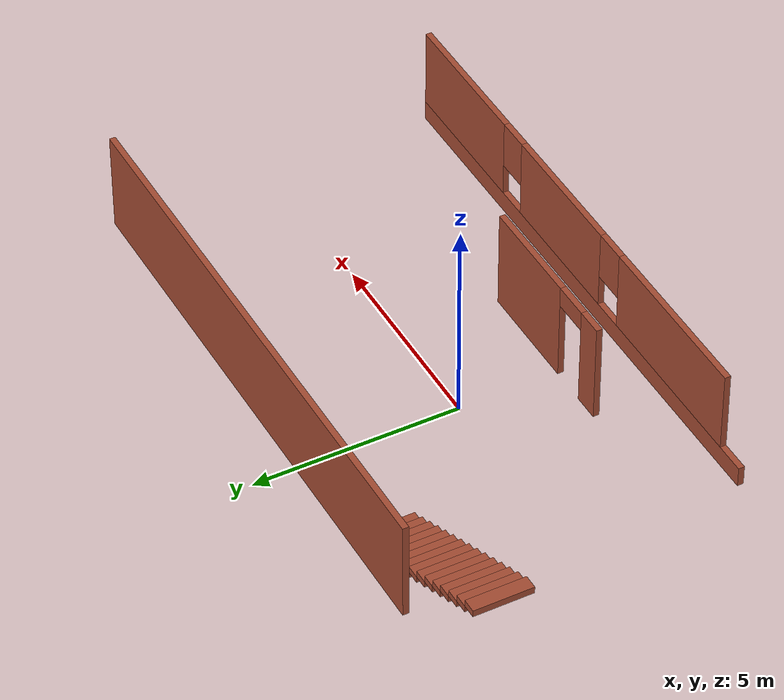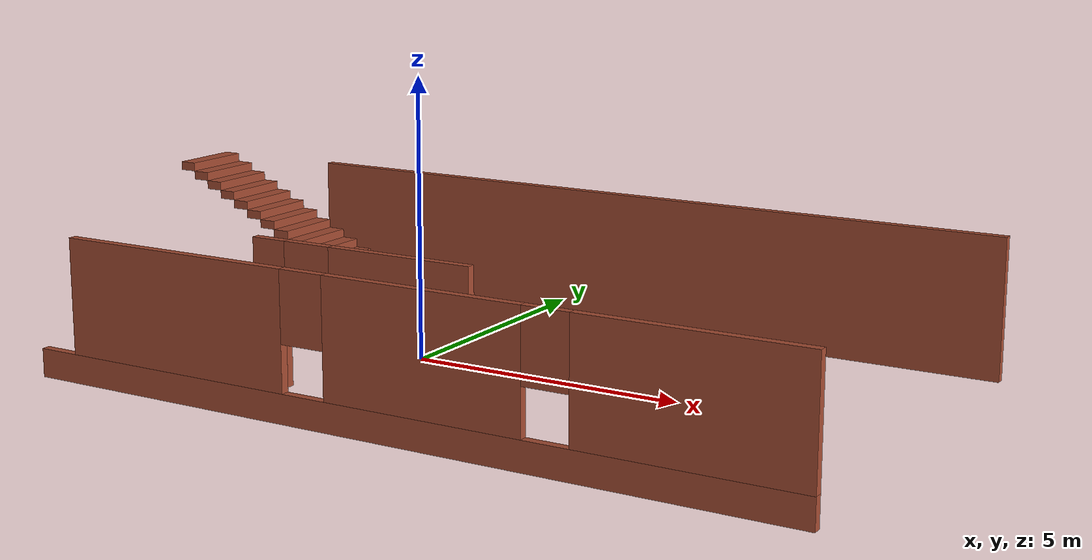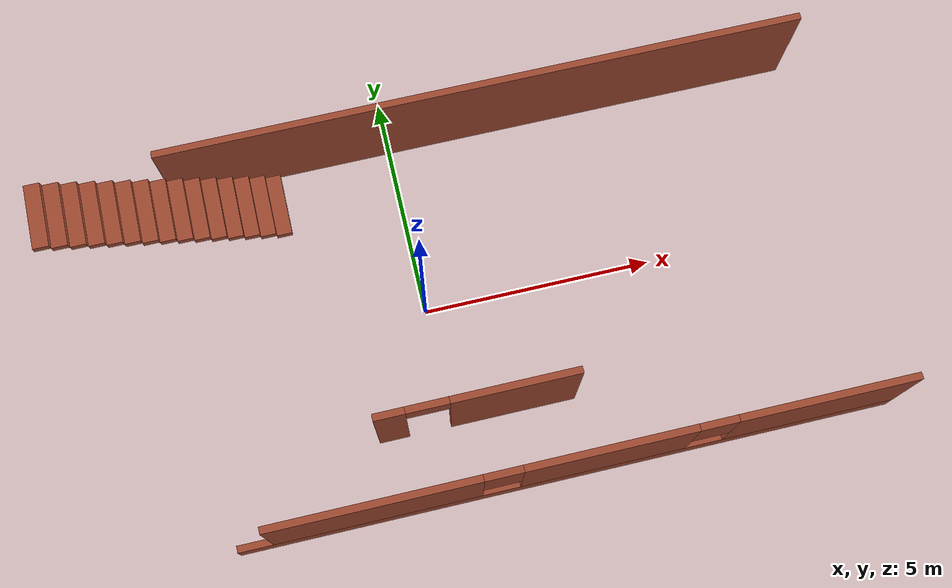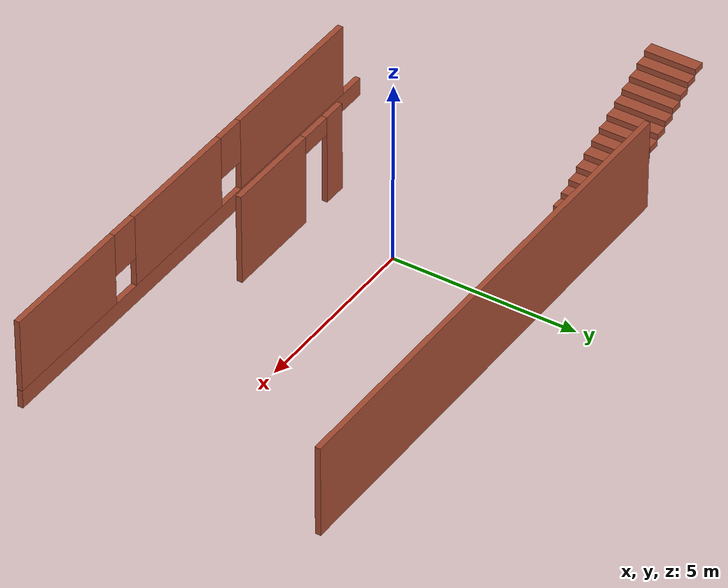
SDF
<sdf version="1.7">
 <model name="my_test_world">
  <link name="Stairs_1">
   <visual name="Stairs_1_Visual_0">
    <pose>-2.66061 3.11353 0.083333 0 -0 -1.5708</pose>
    <geometry><box><size>1.40227 0.336583 0.166667</size></box></geometry>
    <material>
     <script><uri>file://media/materials/scripts/gazebo.material</uri><name>Gazebo/Bricks</name></script>
     <ambient>1 1 1 1</ambient>
     <shader type="pixel"/>
    </material>
    <meta><layer>0</layer></meta>
   </visual>
   <visual name="Stairs_1_Visual_1">
    <pose>-2.99719 3.11353 0.25 0 -0 -1.5708</pose>
    <geometry><box><size>1.40227 0.336583 0.166667</size></box></geometry>
    <material>
     <script><uri>file://media/materials/scripts/gazebo.material</uri><name>Gazebo/Bricks</name></script>
     <ambient>1 1 1 1</ambient>
     <shader type="pixel"/>
    </material>
    <meta><layer>0</layer></meta>
   </visual>
   <visual name="Stairs_1_Visual_2">
    <pose>-3.33377 3.11353 0.416667 0 -0 -1.5708</pose>
    <geometry><box><size>1.40227 0.336583 0.166667</size></box></geometry>
    <material>
     <script><uri>file://media/materials/scripts/gazebo.material</uri><name>Gazebo/Bricks</name></script>
     <ambient>1 1 1 1</ambient>
     <shader type="pixel"/>
    </material>
    <meta><layer>0</layer></meta>
   </visual>
   <visual name="Stairs_1_Visual_3">
    <pose>-3.67036 3.11353 0.583333 0 -0 -1.5708</pose>
    <geometry><box><size>1.40227 0.336583 0.166667</size></box></geometry>
    <material>
     <script><uri>file://media/materials/scripts/gazebo.material</uri><name>Gazebo/Bricks</name></script>
     <ambient>1 1 1 1</ambient>
     <shader type="pixel"/>
    </material>
    <meta><layer>0</layer></meta>
   </visual>
   <visual name="Stairs_1_Visual_4">
    <pose>-4.00694 3.11353 0.75 0 -0 -1.5708</pose>
    <geometry><box><size>1.40227 0.336583 0.166667</size></box></geometry>
    <material>
     <script><uri>file://media/materials/scripts/gazebo.material</uri><name>Gazebo/Bricks</name></script>
     <ambient>1 1 1 1</ambient>
     <shader type="pixel"/>
    </material>
    <meta><layer>0</layer></meta>
   </visual>
   <visual name="Stairs_1_Visual_8">
    <pose>-5.35327 3.11353 1.41667 0 -0 -1.5708</pose>
    <geometry><box><size>1.40227 0.336583 0.166667</size></box></geometry>
    <material>
     <script><uri>file://media/materials/scripts/gazebo.material</uri><name>Gazebo/Bricks</name></script>
     <ambient>1 1 1 1</ambient>
     <shader type="pixel"/>
    </material>
    <meta><layer>0</layer></meta>
   </visual>
   <visual name="Stairs_1_Visual_5">
    <pose>-4.34352 3.11353 0.916667 0 -0 -1.5708</pose>
    <geometry><box><size>1.40227 0.336583 0.166667</size></box></geometry>
    <material>
     <script><uri>file://media/materials/scripts/gazebo.material</uri><name>Gazebo/Bricks</name></script>
     <ambient>1 1 1 1</ambient>
     <shader type="pixel"/>
    </material>
    <meta><layer>0</layer></meta>
   </visual>
   <visual name="Stairs_1_Visual_6">
    <pose>-4.68011 3.11353 1.08333 0 -0 -1.5708</pose>
    <geometry><box><size>1.40227 0.336583 0.166667</size></box></geometry>
    <material>
     <script><uri>file://media/materials/scripts/gazebo.material</uri><name>Gazebo/Bricks</name></script>
     <ambient>1 1 1 1</ambient>
     <shader type="pixel"/>
    </material>
    <meta><layer>0</layer></meta>
   </visual>
   <visual name="Stairs_1_Visual_7">
    <pose>-5.01669 3.11353 1.25 0 -0 -1.5708</pose>
    <geometry><box><size>1.40227 0.336583 0.166667</size></box></geometry>
    <material>
     <script><uri>file://media/materials/scripts/gazebo.material</uri><name>Gazebo/Bricks</name></script>
     <ambient>1 1 1 1</ambient>
     <shader type="pixel"/>
    </material>
    <meta><layer>0</layer></meta>
   </visual>
   <visual name="Stairs_1_Visual_9">
    <pose>-5.68986 3.11353 1.58333 0 -0 -1.5708</pose>
    <geometry><box><size>1.40227 0.336583 0.166667</size></box></geometry>
    <material>
     <script><uri>file://media/materials/scripts/gazebo.material</uri><name>Gazebo/Bricks</name></script>
     <ambient>1 1 1 1</ambient>
     <shader type="pixel"/>
    </material>
    <meta><layer>0</layer></meta>
   </visual>
   <visual name="Stairs_1_Visual_10">
    <pose>-6.02644 3.11353 1.75 0 -0 -1.5708</pose>
    <geometry><box><size>1.40227 0.336583 0.166667</size></box></geometry>
    <material>
     <script><uri>file://media/materials/scripts/gazebo.material</uri><name>Gazebo/Bricks</name></script>
     <ambient>1 1 1 1</ambient>
     <shader type="pixel"/>
    </material>
    <meta><layer>0</layer></meta>
   </visual>
   <visual name="Stairs_1_Visual_11">
    <pose>-6.36302 3.11353 1.91667 0 -0 -1.5708</pose>
    <geometry><box><size>1.40227 0.336583 0.166667</size></box></geometry>
    <material>
     <script><uri>file://media/materials/scripts/gazebo.material</uri><name>Gazebo/Bricks</name></script>
     <ambient>1 1 1 1</ambient>
     <shader type="pixel"/>
    </material>
    <meta><layer>0</layer></meta>
   </visual>
   <visual name="Stairs_1_Visual_12">
    <pose>-6.69961 3.11353 2.08333 0 -0 -1.5708</pose>
    <geometry><box><size>1.40227 0.336583 0.166667</size></box></geometry>
    <material>
     <script><uri>file://media/materials/scripts/gazebo.material</uri><name>Gazebo/Bricks</name></script>
     <ambient>1 1 1 1</ambient>
     <shader type="pixel"/>
    </material>
    <meta><layer>0</layer></meta>
   </visual>
   <visual name="Stairs_1_Visual_13">
    <pose>-7.03619 3.11353 2.25 0 -0 -1.5708</pose>
    <geometry><box><size>1.40227 0.336583 0.166667</size></box></geometry>
    <material>
     <script><uri>file://media/materials/scripts/gazebo.material</uri><name>Gazebo/Bricks</name></script>
     <ambient>1 1 1 1</ambient>
     <shader type="pixel"/>
    </material>
    <meta><layer>0</layer></meta>
   </visual>
   <visual name="Stairs_1_Visual_14">
    <pose>-7.37277 3.11353 2.41667 0 -0 -1.5708</pose>
    <geometry><box><size>1.40227 0.336583 0.166667</size></box></geometry>
    <material>
     <script><uri>file://media/materials/scripts/gazebo.material</uri><name>Gazebo/Bricks</name></script>
     <ambient>1 1 1 1</ambient>
     <shader type="pixel"/>
    </material>
    <meta><layer>0</layer></meta>
   </visual>
   <collision name="Stairs_1_Collision_0">
    <pose>-2.66061 3.11353 0.083333 0 0 -1.5708</pose>
    <geometry><box><size>1.40227 0.336583 0.166667</size></box></geometry>
    <surface>
     <friction>
      <ode><mu>1</mu><mu2>1</mu2><fdir1>0 0 0</fdir1><slip1>0</slip1><slip2>0</slip2></ode>
      <torsional>
       <coefficient>1</coefficient>
       <patch_radius>0</patch_radius>
       <surface_radius>0</surface_radius>
       <use_patch_radius>1</use_patch_radius>
       <ode><slip>0</slip></ode>
      </torsional>
     </friction>
     <bounce><restitution_coefficient>0</restitution_coefficient><threshold>1e+06</threshold></bounce>
     <contact>
      <collide_without_contact>0</collide_without_contact>
      <collide_without_contact_bitmask>1</collide_without_contact_bitmask>
      <collide_bitmask>1</collide_bitmask>
      <ode>
       <soft_cfm>0</soft_cfm>
       <soft_erp>0.2</soft_erp>
       <kp>1e+13</kp>
       <kd>1</kd>
       <max_vel>0.01</max_vel>
       <min_depth>0</min_depth>
      </ode>
      <bullet>
       <split_impulse>1</split_impulse>
       <split_impulse_penetration_threshold>-0.01</split_impulse_penetration_threshold>
       <soft_cfm>0</soft_cfm>
       <soft_erp>0.2</soft_erp>
       <kp>1e+13</kp>
       <kd>1</kd>
      </bullet>
     </contact>
    </surface>
   </collision>
   <collision name="Stairs_1_Collision_1">
    <pose>-2.99719 3.11353 0.25 0 0 -1.5708</pose>
    <geometry><box><size>1.40227 0.336583 0.166667</size></box></geometry>
    <surface>
     <friction>
      <ode><mu>1</mu><mu2>1</mu2><fdir1>0 0 0</fdir1><slip1>0</slip1><slip2>0</slip2></ode>
      <torsional>
       <coefficient>1</coefficient>
       <patch_radius>0</patch_radius>
       <surface_radius>0</surface_radius>
       <use_patch_radius>1</use_patch_radius>
       <ode><slip>0</slip></ode>
      </torsional>
     </friction>
     <bounce><restitution_coefficient>0</restitution_coefficient><threshold>1e+06</threshold></bounce>
     <contact>
      <collide_without_contact>0</collide_without_contact>
      <collide_without_contact_bitmask>1</collide_without_contact_bitmask>
      <collide_bitmask>1</collide_bitmask>
      <ode>
       <soft_cfm>0</soft_cfm>
       <soft_erp>0.2</soft_erp>
       <kp>1e+13</kp>
       <kd>1</kd>
       <max_vel>0.01</max_vel>
       <min_depth>0</min_depth>
      </ode>
      <bullet>
       <split_impulse>1</split_impulse>
       <split_impulse_penetration_threshold>-0.01</split_impulse_penetration_threshold>
       <soft_cfm>0</soft_cfm>
       <soft_erp>0.2</soft_erp>
       <kp>1e+13</kp>
       <kd>1</kd>
      </bullet>
     </contact>
    </surface>
   </collision>
   <collision name="Stairs_1_Collision_2">
    <pose>-3.33377 3.11353 0.416667 0 0 -1.5708</pose>
    <geometry><box><size>1.40227 0.336583 0.166667</size></box></geometry>
    <surface>
     <friction>
      <ode><mu>1</mu><mu2>1</mu2><fdir1>0 0 0</fdir1><slip1>0</slip1><slip2>0</slip2></ode>
      <torsional>
       <coefficient>1</coefficient>
       <patch_radius>0</patch_radius>
       <surface_radius>0</surface_radius>
       <use_patch_radius>1</use_patch_radius>
       <ode><slip>0</slip></ode>
      </torsional>
     </friction>
     <bounce><restitution_coefficient>0</restitution_coefficient><threshold>1e+06</threshold></bounce>
     <contact>
      <collide_without_contact>0</collide_without_contact>
      <collide_without_contact_bitmask>1</collide_without_contact_bitmask>
      <collide_bitmask>1</collide_bitmask>
      <ode>
       <soft_cfm>0</soft_cfm>
       <soft_erp>0.2</soft_erp>
       <kp>1e+13</kp>
       <kd>1</kd>
       <max_vel>0.01</max_vel>
       <min_depth>0</min_depth>
      </ode>
      <bullet>
       <split_impulse>1</split_impulse>
       <split_impulse_penetration_threshold>-0.01</split_impulse_penetration_threshold>
       <soft_cfm>0</soft_cfm>
       <soft_erp>0.2</soft_erp>
       <kp>1e+13</kp>
       <kd>1</kd>
      </bullet>
     </contact>
    </surface>
   </collision>
   <collision name="Stairs_1_Collision_4">
    <pose>-4.00694 3.11353 0.75 0 0 -1.5708</pose>
    <geometry><box><size>1.40227 0.336583 0.166667</size></box></geometry>
    <surface>
     <friction>
      <ode><mu>1</mu><mu2>1</mu2><fdir1>0 0 0</fdir1><slip1>0</slip1><slip2>0</slip2></ode>
      <torsional>
       <coefficient>1</coefficient>
       <patch_radius>0</patch_radius>
       <surface_radius>0</surface_radius>
       <use_patch_radius>1</use_patch_radius>
       <ode><slip>0</slip></ode>
      </torsional>
     </friction>
     <bounce><restitution_coefficient>0</restitution_coefficient><threshold>1e+06</threshold></bounce>
     <contact>
      <collide_without_contact>0</collide_without_contact>
      <collide_without_contact_bitmask>1</collide_without_contact_bitmask>
      <collide_bitmask>1</collide_bitmask>
      <ode>
       <soft_cfm>0</soft_cfm>
       <soft_erp>0.2</soft_erp>
       <kp>1e+13</kp>
       <kd>1</kd>
       <max_vel>0.01</max_vel>
       <min_depth>0</min_depth>
      </ode>
      <bullet>
       <split_impulse>1</split_impulse>
       <split_impulse_penetration_threshold>-0.01</split_impulse_penetration_threshold>
       <soft_cfm>0</soft_cfm>
       <soft_erp>0.2</soft_erp>
       <kp>1e+13</kp>
       <kd>1</kd>
      </bullet>
     </contact>
    </surface>
   </collision>
   <collision name="Stairs_1_Collision_3">
    <pose>-3.67036 3.11353 0.583333 0 0 -1.5708</pose>
    <geometry><box><size>1.40227 0.336583 0.166667</size></box></geometry>
    <surface>
     <friction>
      <ode><mu>1</mu><mu2>1</mu2><fdir1>0 0 0</fdir1><slip1>0</slip1><slip2>0</slip2></ode>
      <torsional>
       <coefficient>1</coefficient>
       <patch_radius>0</patch_radius>
       <surface_radius>0</surface_radius>
       <use_patch_radius>1</use_patch_radius>
       <ode><slip>0</slip></ode>
      </torsional>
     </friction>
     <bounce><restitution_coefficient>0</restitution_coefficient><threshold>1e+06</threshold></bounce>
     <contact>
      <collide_without_contact>0</collide_without_contact>
      <collide_without_contact_bitmask>1</collide_without_contact_bitmask>
      <collide_bitmask>1</collide_bitmask>
      <ode>
       <soft_cfm>0</soft_cfm>
       <soft_erp>0.2</soft_erp>
       <kp>1e+13</kp>
       <kd>1</kd>
       <max_vel>0.01</max_vel>
       <min_depth>0</min_depth>
      </ode>
      <bullet>
       <split_impulse>1</split_impulse>
       <split_impulse_penetration_threshold>-0.01</split_impulse_penetration_threshold>
       <soft_cfm>0</soft_cfm>
       <soft_erp>0.2</soft_erp>
       <kp>1e+13</kp>
       <kd>1</kd>
      </bullet>
     </contact>
    </surface>
   </collision>
   <collision name="Stairs_1_Collision_5">
    <pose>-4.34352 3.11353 0.916667 0 0 -1.5708</pose>
    <geometry><box><size>1.40227 0.336583 0.166667</size></box></geometry>
    <surface>
     <friction>
      <ode><mu>1</mu><mu2>1</mu2><fdir1>0 0 0</fdir1><slip1>0</slip1><slip2>0</slip2></ode>
      <torsional>
       <coefficient>1</coefficient>
       <patch_radius>0</patch_radius>
       <surface_radius>0</surface_radius>
       <use_patch_radius>1</use_patch_radius>
       <ode><slip>0</slip></ode>
      </torsional>
     </friction>
     <bounce><restitution_coefficient>0</restitution_coefficient><threshold>1e+06</threshold></bounce>
     <contact>
      <collide_without_contact>0</collide_without_contact>
      <collide_without_contact_bitmask>1</collide_without_contact_bitmask>
      <collide_bitmask>1</collide_bitmask>
      <ode>
       <soft_cfm>0</soft_cfm>
       <soft_erp>0.2</soft_erp>
       <kp>1e+13</kp>
       <kd>1</kd>
       <max_vel>0.01</max_vel>
       <min_depth>0</min_depth>
      </ode>
      <bullet>
       <split_impulse>1</split_impulse>
       <split_impulse_penetration_threshold>-0.01</split_impulse_penetration_threshold>
       <soft_cfm>0</soft_cfm>
       <soft_erp>0.2</soft_erp>
       <kp>1e+13</kp>
       <kd>1</kd>
      </bullet>
     </contact>
    </surface>
   </collision>
   <collision name="Stairs_1_Collision_6">
    <pose>-4.68011 3.11353 1.08333 0 0 -1.5708</pose>
    <geometry><box><size>1.40227 0.336583 0.166667</size></box></geometry>
    <surface>
     <friction>
      <ode><mu>1</mu><mu2>1</mu2><fdir1>0 0 0</fdir1><slip1>0</slip1><slip2>0</slip2></ode>
      <torsional>
       <coefficient>1</coefficient>
       <patch_radius>0</patch_radius>
       <surface_radius>0</surface_radius>
       <use_patch_radius>1</use_patch_radius>
       <ode><slip>0</slip></ode>
      </torsional>
     </friction>
     <bounce><restitution_coefficient>0</restitution_coefficient><threshold>1e+06</threshold></bounce>
     <contact>
      <collide_without_contact>0</collide_without_contact>
      <collide_without_contact_bitmask>1</collide_without_contact_bitmask>
      <collide_bitmask>1</collide_bitmask>
      <ode>
       <soft_cfm>0</soft_cfm>
       <soft_erp>0.2</soft_erp>
       <kp>1e+13</kp>
       <kd>1</kd>
       <max_vel>0.01</max_vel>
       <min_depth>0</min_depth>
      </ode>
      <bullet>
       <split_impulse>1</split_impulse>
       <split_impulse_penetration_threshold>-0.01</split_impulse_penetration_threshold>
       <soft_cfm>0</soft_cfm>
       <soft_erp>0.2</soft_erp>
       <kp>1e+13</kp>
       <kd>1</kd>
      </bullet>
     </contact>
    </surface>
   </collision>
   <collision name="Stairs_1_Collision_7">
    <pose>-5.01669 3.11353 1.25 0 0 -1.5708</pose>
    <geometry><box><size>1.40227 0.336583 0.166667</size></box></geometry>
    <surface>
     <friction>
      <ode><mu>1</mu><mu2>1</mu2><fdir1>0 0 0</fdir1><slip1>0</slip1><slip2>0</slip2></ode>
      <torsional>
       <coefficient>1</coefficient>
       <patch_radius>0</patch_radius>
       <surface_radius>0</surface_radius>
       <use_patch_radius>1</use_patch_radius>
       <ode><slip>0</slip></ode>
      </torsional>
     </friction>
     <bounce><restitution_coefficient>0</restitution_coefficient><threshold>1e+06</threshold></bounce>
     <contact>
      <collide_without_contact>0</collide_without_contact>
      <collide_without_contact_bitmask>1</collide_without_contact_bitmask>
      <collide_bitmask>1</collide_bitmask>
      <ode>
       <soft_cfm>0</soft_cfm>
       <soft_erp>0.2</soft_erp>
       <kp>1e+13</kp>
       <kd>1</kd>
       <max_vel>0.01</max_vel>
       <min_depth>0</min_depth>
      </ode>
      <bullet>
       <split_impulse>1</split_impulse>
       <split_impulse_penetration_threshold>-0.01</split_impulse_penetration_threshold>
       <soft_cfm>0</soft_cfm>
       <soft_erp>0.2</soft_erp>
       <kp>1e+13</kp>
       <kd>1</kd>
      </bullet>
     </contact>
    </surface>
   </collision>
   <collision name="Stairs_1_Collision_8">
    <pose>-5.35327 3.11353 1.41667 0 0 -1.5708</pose>
    <geometry><box><size>1.40227 0.336583 0.166667</size></box></geometry>
    <surface>
     <friction>
      <ode><mu>1</mu><mu2>1</mu2><fdir1>0 0 0</fdir1><slip1>0</slip1><slip2>0</slip2></ode>
      <torsional>
       <coefficient>1</coefficient>
       <patch_radius>0</patch_radius>
       <surface_radius>0</surface_radius>
       <use_patch_radius>1</use_patch_radius>
       <ode><slip>0</slip></ode>
      </torsional>
     </friction>
     <bounce><restitution_coefficient>0</restitution_coefficient><threshold>1e+06</threshold></bounce>
     <contact>
      <collide_without_contact>0</collide_without_contact>
      <collide_without_contact_bitmask>1</collide_without_contact_bitmask>
      <collide_bitmask>1</collide_bitmask>
      <ode>
       <soft_cfm>0</soft_cfm>
       <soft_erp>0.2</soft_erp>
       <kp>1e+13</kp>
       <kd>1</kd>
       <max_vel>0.01</max_vel>
       <min_depth>0</min_depth>
      </ode>
      <bullet>
       <split_impulse>1</split_impulse>
       <split_impulse_penetration_threshold>-0.01</split_impulse_penetration_threshold>
       <soft_cfm>0</soft_cfm>
       <soft_erp>0.2</soft_erp>
       <kp>1e+13</kp>
       <kd>1</kd>
      </bullet>
     </contact>
    </surface>
   </collision>
   <collision name="Stairs_1_Collision_9">
    <pose>-5.68986 3.11353 1.58333 0 0 -1.5708</pose>
    <geometry><box><size>1.40227 0.336583 0.166667</size></box></geometry>
    <surface>
     <friction>
      <ode><mu>1</mu><mu2>1</mu2><fdir1>0 0 0</fdir1><slip1>0</slip1><slip2>0</slip2></ode>
      <torsional>
       <coefficient>1</coefficient>
       <patch_radius>0</patch_radius>
       <surface_radius>0</surface_radius>
       <use_patch_radius>1</use_patch_radius>
       <ode><slip>0</slip></ode>
      </torsional>
     </friction>
     <bounce><restitution_coefficient>0</restitution_coefficient><threshold>1e+06</threshold></bounce>
     <contact>
      <collide_without_contact>0</collide_without_contact>
      <collide_without_contact_bitmask>1</collide_without_contact_bitmask>
      <collide_bitmask>1</collide_bitmask>
      <ode>
       <soft_cfm>0</soft_cfm>
       <soft_erp>0.2</soft_erp>
       <kp>1e+13</kp>
       <kd>1</kd>
       <max_vel>0.01</max_vel>
       <min_depth>0</min_depth>
      </ode>
      <bullet>
       <split_impulse>1</split_impulse>
       <split_impulse_penetration_threshold>-0.01</split_impulse_penetration_threshold>
       <soft_cfm>0</soft_cfm>
       <soft_erp>0.2</soft_erp>
       <kp>1e+13</kp>
       <kd>1</kd>
      </bullet>
     </contact>
    </surface>
   </collision>
   <collision name="Stairs_1_Collision_10">
    <pose>-6.02644 3.11353 1.75 0 0 -1.5708</pose>
    <geometry><box><size>1.40227 0.336583 0.166667</size></box></geometry>
    <surface>
     <friction>
      <ode><mu>1</mu><mu2>1</mu2><fdir1>0 0 0</fdir1><slip1>0</slip1><slip2>0</slip2></ode>
      <torsional>
       <coefficient>1</coefficient>
       <patch_radius>0</patch_radius>
       <surface_radius>0</surface_radius>
       <use_patch_radius>1</use_patch_radius>
       <ode><slip>0</slip></ode>
      </torsional>
     </friction>
     <bounce><restitution_coefficient>0</restitution_coefficient><threshold>1e+06</threshold></bounce>
     <contact>
      <collide_without_contact>0</collide_without_contact>
      <collide_without_contact_bitmask>1</collide_without_contact_bitmask>
      <collide_bitmask>1</collide_bitmask>
      <ode>
       <soft_cfm>0</soft_cfm>
       <soft_erp>0.2</soft_erp>
       <kp>1e+13</kp>
       <kd>1</kd>
       <max_vel>0.01</max_vel>
       <min_depth>0</min_depth>
      </ode>
      <bullet>
       <split_impulse>1</split_impulse>
       <split_impulse_penetration_threshold>-0.01</split_impulse_penetration_threshold>
       <soft_cfm>0</soft_cfm>
       <soft_erp>0.2</soft_erp>
       <kp>1e+13</kp>
       <kd>1</kd>
      </bullet>
     </contact>
    </surface>
   </collision>
   <collision name="Stairs_1_Collision_11">
    <pose>-6.36302 3.11353 1.91667 0 0 -1.5708</pose>
    <geometry><box><size>1.40227 0.336583 0.166667</size></box></geometry>
    <surface>
     <friction>
      <ode><mu>1</mu><mu2>1</mu2><fdir1>0 0 0</fdir1><slip1>0</slip1><slip2>0</slip2></ode>
      <torsional>
       <coefficient>1</coefficient>
       <patch_radius>0</patch_radius>
       <surface_radius>0</surface_radius>
       <use_patch_radius>1</use_patch_radius>
       <ode><slip>0</slip></ode>
      </torsional>
     </friction>
     <bounce><restitution_coefficient>0</restitution_coefficient><threshold>1e+06</threshold></bounce>
     <contact>
      <collide_without_contact>0</collide_without_contact>
      <collide_without_contact_bitmask>1</collide_without_contact_bitmask>
      <collide_bitmask>1</collide_bitmask>
      <ode>
       <soft_cfm>0</soft_cfm>
       <soft_erp>0.2</soft_erp>
       <kp>1e+13</kp>
       <kd>1</kd>
       <max_vel>0.01</max_vel>
       <min_depth>0</min_depth>
      </ode>
      <bullet>
       <split_impulse>1</split_impulse>
       <split_impulse_penetration_threshold>-0.01</split_impulse_penetration_threshold>
       <soft_cfm>0</soft_cfm>
       <soft_erp>0.2</soft_erp>
       <kp>1e+13</kp>
       <kd>1</kd>
      </bullet>
     </contact>
    </surface>
   </collision>
   <collision name="Stairs_1_Collision_12">
    <pose>-6.69961 3.11353 2.08333 0 0 -1.5708</pose>
    <geometry><box><size>1.40227 0.336583 0.166667</size></box></geometry>
    <surface>
     <friction>
      <ode><mu>1</mu><mu2>1</mu2><fdir1>0 0 0</fdir1><slip1>0</slip1><slip2>0</slip2></ode>
      <torsional>
       <coefficient>1</coefficient>
       <patch_radius>0</patch_radius>
       <surface_radius>0</surface_radius>
       <use_patch_radius>1</use_patch_radius>
       <ode><slip>0</slip></ode>
      </torsional>
     </friction>
     <bounce><restitution_coefficient>0</restitution_coefficient><threshold>1e+06</threshold></bounce>
     <contact>
      <collide_without_contact>0</collide_without_contact>
      <collide_without_contact_bitmask>1</collide_without_contact_bitmask>
      <collide_bitmask>1</collide_bitmask>
      <ode>
       <soft_cfm>0</soft_cfm>
       <soft_erp>0.2</soft_erp>
       <kp>1e+13</kp>
       <kd>1</kd>
       <max_vel>0.01</max_vel>
       <min_depth>0</min_depth>
      </ode>
      <bullet>
       <split_impulse>1</split_impulse>
       <split_impulse_penetration_threshold>-0.01</split_impulse_penetration_threshold>
       <soft_cfm>0</soft_cfm>
       <soft_erp>0.2</soft_erp>
       <kp>1e+13</kp>
       <kd>1</kd>
      </bullet>
     </contact>
    </surface>
   </collision>
   <collision name="Stairs_1_Collision_13">
    <pose>-7.03619 3.11353 2.25 0 0 -1.5708</pose>
    <geometry><box><size>1.40227 0.336583 0.166667</size></box></geometry>
    <surface>
     <friction>
      <ode><mu>1</mu><mu2>1</mu2><fdir1>0 0 0</fdir1><slip1>0</slip1><slip2>0</slip2></ode>
      <torsional>
       <coefficient>1</coefficient>
       <patch_radius>0</patch_radius>
       <surface_radius>0</surface_radius>
       <use_patch_radius>1</use_patch_radius>
       <ode><slip>0</slip></ode>
      </torsional>
     </friction>
     <bounce><restitution_coefficient>0</restitution_coefficient><threshold>1e+06</threshold></bounce>
     <contact>
      <collide_without_contact>0</collide_without_contact>
      <collide_without_contact_bitmask>1</collide_without_contact_bitmask>
      <collide_bitmask>1</collide_bitmask>
      <ode>
       <soft_cfm>0</soft_cfm>
       <soft_erp>0.2</soft_erp>
       <kp>1e+13</kp>
       <kd>1</kd>
       <max_vel>0.01</max_vel>
       <min_depth>0</min_depth>
      </ode>
      <bullet>
       <split_impulse>1</split_impulse>
       <split_impulse_penetration_threshold>-0.01</split_impulse_penetration_threshold>
       <soft_cfm>0</soft_cfm>
       <soft_erp>0.2</soft_erp>
       <kp>1e+13</kp>
       <kd>1</kd>
      </bullet>
     </contact>
    </surface>
   </collision>
   <collision name="Stairs_1_Collision_14">
    <pose>-7.37277 3.11353 2.41667 0 0 -1.5708</pose>
    <geometry><box><size>1.40227 0.336583 0.166667</size></box></geometry>
    <surface>
     <friction>
      <ode><mu>1</mu><mu2>1</mu2><fdir1>0 0 0</fdir1><slip1>0</slip1><slip2>0</slip2></ode>
      <torsional>
       <coefficient>1</coefficient>
       <patch_radius>0</patch_radius>
       <surface_radius>0</surface_radius>
       <use_patch_radius>1</use_patch_radius>
       <ode><slip>0</slip></ode>
      </torsional>
     </friction>
     <bounce><restitution_coefficient>0</restitution_coefficient><threshold>1e+06</threshold></bounce>
     <contact>
      <collide_without_contact>0</collide_without_contact>
      <collide_without_contact_bitmask>1</collide_without_contact_bitmask>
      <collide_bitmask>1</collide_bitmask>
      <ode>
       <soft_cfm>0</soft_cfm>
       <soft_erp>0.2</soft_erp>
       <kp>1e+13</kp>
       <kd>1</kd>
       <max_vel>0.01</max_vel>
       <min_depth>0</min_depth>
      </ode>
      <bullet>
       <split_impulse>1</split_impulse>
       <split_impulse_penetration_threshold>-0.01</split_impulse_penetration_threshold>
       <soft_cfm>0</soft_cfm>
       <soft_erp>0.2</soft_erp>
       <kp>1e+13</kp>
       <kd>1</kd>
      </bullet>
     </contact>
    </surface>
   </collision>
  </link>
  <link name="Wall_12">
   <pose>2.12401 -4.15318 0 0 -0 0</pose>
   <visual name="Wall_12_Visual_0">
    <pose>0 0 0.25 0 -0 0</pose>
    <geometry><box><size>14 0.15 0.5</size></box></geometry>
    <material>
     <script><uri>file://media/materials/scripts/gazebo.material</uri><name>Gazebo/Bricks</name></script>
     <ambient>1 1 1 1</ambient>
     <shader type="pixel"/>
    </material>
    <meta><layer>0</layer></meta>
   </visual>
   <visual name="Wall_12_Visual_1">
    <pose>-4.05327 0 1.5 0 -0 0</pose>
    <geometry><box><size>4.3893 0.15 2</size></box></geometry>
    <material>
     <script><uri>file://media/materials/scripts/gazebo.material</uri><name>Gazebo/Bricks</name></script>
     <ambient>1 1 1 1</ambient>
     <shader type="pixel"/>
    </material>
    <meta><layer>0</layer></meta>
   </visual>
   <visual name="Wall_12_Visual_2">
    <pose>0.703592 0 1.5 0 -0 0</pose>
    <geometry><box><size>3.52442 0.15 2</size></box></geometry>
    <material>
     <script><uri>file://media/materials/scripts/gazebo.material</uri><name>Gazebo/Bricks</name></script>
     <ambient>1 1 1 1</ambient>
     <shader type="pixel"/>
    </material>
    <meta><layer>0</layer></meta>
   </visual>
   <visual name="Wall_12_Visual_3">
    <pose>5.1329 0 1.5 0 -0 0</pose>
    <geometry><box><size>3.7342 0.15 2</size></box></geometry>
    <material>
     <script><uri>file://media/materials/scripts/gazebo.material</uri><name>Gazebo/Bricks</name></script>
     <ambient>1 1 1 1</ambient>
     <shader type="pixel"/>
    </material>
    <meta><layer>0</layer></meta>
   </visual>
   <visual name="Wall_12_Visual_4">
    <pose>-1.45862 0 1.9 0 -0 0</pose>
    <geometry><box><size>0.8 0.15 1.2</size></box></geometry>
    <material>
     <script><uri>file://media/materials/scripts/gazebo.material</uri><name>Gazebo/Bricks</name></script>
     <ambient>1 1 1 1</ambient>
     <shader type="pixel"/>
    </material>
    <meta><layer>0</layer></meta>
   </visual>
   <visual name="Wall_12_Visual_5">
    <pose>2.8658 0 1.9 0 -0 0</pose>
    <geometry><box><size>0.8 0.15 1.2</size></box></geometry>
    <material>
     <script><uri>file://media/materials/scripts/gazebo.material</uri><name>Gazebo/Bricks</name></script>
     <ambient>1 1 1 1</ambient>
     <shader type="pixel"/>
    </material>
    <meta><layer>0</layer></meta>
   </visual>
   <collision name="Wall_12_Collision_0">
    <pose>0 0 0.25 0 -0 0</pose>
    <geometry><box><size>14 0.15 0.5</size></box></geometry>
    <surface>
     <friction>
      <ode><mu>1</mu><mu2>1</mu2><fdir1>0 0 0</fdir1><slip1>0</slip1><slip2>0</slip2></ode>
      <torsional>
       <coefficient>1</coefficient>
       <patch_radius>0</patch_radius>
       <surface_radius>0</surface_radius>
       <use_patch_radius>1</use_patch_radius>
       <ode><slip>0</slip></ode>
      </torsional>
     </friction>
     <bounce><restitution_coefficient>0</restitution_coefficient><threshold>1e+06</threshold></bounce>
     <contact>
      <collide_without_contact>0</collide_without_contact>
      <collide_without_contact_bitmask>1</collide_without_contact_bitmask>
      <collide_bitmask>1</collide_bitmask>
      <ode>
       <soft_cfm>0</soft_cfm>
       <soft_erp>0.2</soft_erp>
       <kp>1e+13</kp>
       <kd>1</kd>
       <max_vel>0.01</max_vel>
       <min_depth>0</min_depth>
      </ode>
      <bullet>
       <split_impulse>1</split_impulse>
       <split_impulse_penetration_threshold>-0.01</split_impulse_penetration_threshold>
       <soft_cfm>0</soft_cfm>
       <soft_erp>0.2</soft_erp>
       <kp>1e+13</kp>
       <kd>1</kd>
      </bullet>
     </contact>
    </surface>
   </collision>
   <collision name="Wall_12_Collision_1">
    <pose>-4.05327 0 1.5 0 -0 0</pose>
    <geometry><box><size>4.3893 0.15 2</size></box></geometry>
    <surface>
     <friction>
      <ode><mu>1</mu><mu2>1</mu2><fdir1>0 0 0</fdir1><slip1>0</slip1><slip2>0</slip2></ode>
      <torsional>
       <coefficient>1</coefficient>
       <patch_radius>0</patch_radius>
       <surface_radius>0</surface_radius>
       <use_patch_radius>1</use_patch_radius>
       <ode><slip>0</slip></ode>
      </torsional>
     </friction>
     <bounce><restitution_coefficient>0</restitution_coefficient><threshold>1e+06</threshold></bounce>
     <contact>
      <collide_without_contact>0</collide_without_contact>
      <collide_without_contact_bitmask>1</collide_without_contact_bitmask>
      <collide_bitmask>1</collide_bitmask>
      <ode>
       <soft_cfm>0</soft_cfm>
       <soft_erp>0.2</soft_erp>
       <kp>1e+13</kp>
       <kd>1</kd>
       <max_vel>0.01</max_vel>
       <min_depth>0</min_depth>
      </ode>
      <bullet>
       <split_impulse>1</split_impulse>
       <split_impulse_penetration_threshold>-0.01</split_impulse_penetration_threshold>
       <soft_cfm>0</soft_cfm>
       <soft_erp>0.2</soft_erp>
       <kp>1e+13</kp>
       <kd>1</kd>
      </bullet>
     </contact>
    </surface>
   </collision>
   <collision name="Wall_12_Collision_2">
    <pose>0.703592 0 1.5 0 -0 0</pose>
    <geometry><box><size>3.52442 0.15 2</size></box></geometry>
    <surface>
     <friction>
      <ode><mu>1</mu><mu2>1</mu2><fdir1>0 0 0</fdir1><slip1>0</slip1><slip2>0</slip2></ode>
      <torsional>
       <coefficient>1</coefficient>
       <patch_radius>0</patch_radius>
       <surface_radius>0</surface_radius>
       <use_patch_radius>1</use_patch_radius>
       <ode><slip>0</slip></ode>
      </torsional>
     </friction>
     <bounce><restitution_coefficient>0</restitution_coefficient><threshold>1e+06</threshold></bounce>
     <contact>
      <collide_without_contact>0</collide_without_contact>
      <collide_without_contact_bitmask>1</collide_without_contact_bitmask>
      <collide_bitmask>1</collide_bitmask>
      <ode>
       <soft_cfm>0</soft_cfm>
       <soft_erp>0.2</soft_erp>
       <kp>1e+13</kp>
       <kd>1</kd>
       <max_vel>0.01</max_vel>
       <min_depth>0</min_depth>
      </ode>
      <bullet>
       <split_impulse>1</split_impulse>
       <split_impulse_penetration_threshold>-0.01</split_impulse_penetration_threshold>
       <soft_cfm>0</soft_cfm>
       <soft_erp>0.2</soft_erp>
       <kp>1e+13</kp>
       <kd>1</kd>
      </bullet>
     </contact>
    </surface>
   </collision>
   <collision name="Wall_12_Collision_3">
    <pose>5.1329 0 1.5 0 -0 0</pose>
    <geometry><box><size>3.7342 0.15 2</size></box></geometry>
    <surface>
     <friction>
      <ode><mu>1</mu><mu2>1</mu2><fdir1>0 0 0</fdir1><slip1>0</slip1><slip2>0</slip2></ode>
      <torsional>
       <coefficient>1</coefficient>
       <patch_radius>0</patch_radius>
       <surface_radius>0</surface_radius>
       <use_patch_radius>1</use_patch_radius>
       <ode><slip>0</slip></ode>
      </torsional>
     </friction>
     <bounce><restitution_coefficient>0</restitution_coefficient><threshold>1e+06</threshold></bounce>
     <contact>
      <collide_without_contact>0</collide_without_contact>
      <collide_without_contact_bitmask>1</collide_without_contact_bitmask>
      <collide_bitmask>1</collide_bitmask>
      <ode>
       <soft_cfm>0</soft_cfm>
       <soft_erp>0.2</soft_erp>
       <kp>1e+13</kp>
       <kd>1</kd>
       <max_vel>0.01</max_vel>
       <min_depth>0</min_depth>
      </ode>
      <bullet>
       <split_impulse>1</split_impulse>
       <split_impulse_penetration_threshold>-0.01</split_impulse_penetration_threshold>
       <soft_cfm>0</soft_cfm>
       <soft_erp>0.2</soft_erp>
       <kp>1e+13</kp>
       <kd>1</kd>
      </bullet>
     </contact>
    </surface>
   </collision>
   <collision name="Wall_12_Collision_5">
    <pose>2.8658 0 1.9 0 -0 0</pose>
    <geometry><box><size>0.8 0.15 1.2</size></box></geometry>
    <surface>
     <friction>
      <ode><mu>1</mu><mu2>1</mu2><fdir1>0 0 0</fdir1><slip1>0</slip1><slip2>0</slip2></ode>
      <torsional>
       <coefficient>1</coefficient>
       <patch_radius>0</patch_radius>
       <surface_radius>0</surface_radius>
       <use_patch_radius>1</use_patch_radius>
       <ode><slip>0</slip></ode>
      </torsional>
     </friction>
     <bounce><restitution_coefficient>0</restitution_coefficient><threshold>1e+06</threshold></bounce>
     <contact>
      <collide_without_contact>0</collide_without_contact>
      <collide_without_contact_bitmask>1</collide_without_contact_bitmask>
      <collide_bitmask>1</collide_bitmask>
      <ode>
       <soft_cfm>0</soft_cfm>
       <soft_erp>0.2</soft_erp>
       <kp>1e+13</kp>
       <kd>1</kd>
       <max_vel>0.01</max_vel>
       <min_depth>0</min_depth>
      </ode>
      <bullet>
       <split_impulse>1</split_impulse>
       <split_impulse_penetration_threshold>-0.01</split_impulse_penetration_threshold>
       <soft_cfm>0</soft_cfm>
       <soft_erp>0.2</soft_erp>
       <kp>1e+13</kp>
       <kd>1</kd>
      </bullet>
     </contact>
    </surface>
   </collision>
   <collision name="Wall_12_Collision_4">
    <pose>-1.45862 0 1.9 0 -0 0</pose>
    <geometry><box><size>0.8 0.15 1.2</size></box></geometry>
    <surface>
     <friction>
      <ode><mu>1</mu><mu2>1</mu2><fdir1>0 0 0</fdir1><slip1>0</slip1><slip2>0</slip2></ode>
      <torsional>
       <coefficient>1</coefficient>
       <patch_radius>0</patch_radius>
       <surface_radius>0</surface_radius>
       <use_patch_radius>1</use_patch_radius>
       <ode><slip>0</slip></ode>
      </torsional>
     </friction>
     <bounce><restitution_coefficient>0</restitution_coefficient><threshold>1e+06</threshold></bounce>
     <contact>
      <collide_without_contact>0</collide_without_contact>
      <collide_without_contact_bitmask>1</collide_without_contact_bitmask>
      <collide_bitmask>1</collide_bitmask>
      <ode>
       <soft_cfm>0</soft_cfm>
       <soft_erp>0.2</soft_erp>
       <kp>1e+13</kp>
       <kd>1</kd>
       <max_vel>0.01</max_vel>
       <min_depth>0</min_depth>
      </ode>
      <bullet>
       <split_impulse>1</split_impulse>
       <split_impulse_penetration_threshold>-0.01</split_impulse_penetration_threshold>
       <soft_cfm>0</soft_cfm>
       <soft_erp>0.2</soft_erp>
       <kp>1e+13</kp>
       <kd>1</kd>
      </bullet>
     </contact>
    </surface>
   </collision>
  </link>
  <link name="Wall_65">
   <pose>0.543129 -2.51828 0 0 -0 0</pose>
   <visual name="Wall_65_Visual_0">
    <pose>-1.7996 0 1.25 0 -0 0</pose>
    <geometry><box><size>0.650792 0.15 2.5</size></box></geometry>
    <material>
     <script><uri>file://media/materials/scripts/gazebo.material</uri><name>Gazebo/Bricks</name></script>
     <ambient>1 1 1 1</ambient>
     <shader type="pixel"/>
    </material>
    <meta><layer>0</layer></meta>
   </visual>
   <visual name="Wall_65_Visual_1">
    <pose>0.775396 0 1.25 0 -0 0</pose>
    <geometry><box><size>2.69921 0.15 2.5</size></box></geometry>
    <material>
     <script><uri>file://media/materials/scripts/gazebo.material</uri><name>Gazebo/Bricks</name></script>
     <ambient>1 1 1 1</ambient>
     <shader type="pixel"/>
    </material>
    <meta><layer>0</layer></meta>
   </visual>
   <visual name="Wall_65_Visual_2">
    <pose>-1.02421 0 2.25 0 -0 0</pose>
    <geometry><box><size>0.9 0.15 0.5</size></box></geometry>
    <material>
     <script><uri>file://media/materials/scripts/gazebo.material</uri><name>Gazebo/Bricks</name></script>
     <ambient>1 1 1 1</ambient>
     <shader type="pixel"/>
    </material>
    <meta><layer>0</layer></meta>
   </visual>
   <collision name="Wall_65_Collision_0">
    <pose>-1.7996 0 1.25 0 -0 0</pose>
    <geometry><box><size>0.650792 0.15 2.5</size></box></geometry>
    <surface>
     <friction>
      <ode><mu>1</mu><mu2>1</mu2><fdir1>0 0 0</fdir1><slip1>0</slip1><slip2>0</slip2></ode>
      <torsional>
       <coefficient>1</coefficient>
       <patch_radius>0</patch_radius>
       <surface_radius>0</surface_radius>
       <use_patch_radius>1</use_patch_radius>
       <ode><slip>0</slip></ode>
      </torsional>
     </friction>
     <bounce><restitution_coefficient>0</restitution_coefficient><threshold>1e+06</threshold></bounce>
     <contact>
      <collide_without_contact>0</collide_without_contact>
      <collide_without_contact_bitmask>1</collide_without_contact_bitmask>
      <collide_bitmask>1</collide_bitmask>
      <ode>
       <soft_cfm>0</soft_cfm>
       <soft_erp>0.2</soft_erp>
       <kp>1e+13</kp>
       <kd>1</kd>
       <max_vel>0.01</max_vel>
       <min_depth>0</min_depth>
      </ode>
      <bullet>
       <split_impulse>1</split_impulse>
       <split_impulse_penetration_threshold>-0.01</split_impulse_penetration_threshold>
       <soft_cfm>0</soft_cfm>
       <soft_erp>0.2</soft_erp>
       <kp>1e+13</kp>
       <kd>1</kd>
      </bullet>
     </contact>
    </surface>
   </collision>
   <collision name="Wall_65_Collision_1">
    <pose>0.775396 0 1.25 0 -0 0</pose>
    <geometry><box><size>2.69921 0.15 2.5</size></box></geometry>
    <surface>
     <friction>
      <ode><mu>1</mu><mu2>1</mu2><fdir1>0 0 0</fdir1><slip1>0</slip1><slip2>0</slip2></ode>
      <torsional>
       <coefficient>1</coefficient>
       <patch_radius>0</patch_radius>
       <surface_radius>0</surface_radius>
       <use_patch_radius>1</use_patch_radius>
       <ode><slip>0</slip></ode>
      </torsional>
     </friction>
     <bounce><restitution_coefficient>0</restitution_coefficient><threshold>1e+06</threshold></bounce>
     <contact>
      <collide_without_contact>0</collide_without_contact>
      <collide_without_contact_bitmask>1</collide_without_contact_bitmask>
      <collide_bitmask>1</collide_bitmask>
      <ode>
       <soft_cfm>0</soft_cfm>
       <soft_erp>0.2</soft_erp>
       <kp>1e+13</kp>
       <kd>1</kd>
       <max_vel>0.01</max_vel>
       <min_depth>0</min_depth>
      </ode>
      <bullet>
       <split_impulse>1</split_impulse>
       <split_impulse_penetration_threshold>-0.01</split_impulse_penetration_threshold>
       <soft_cfm>0</soft_cfm>
       <soft_erp>0.2</soft_erp>
       <kp>1e+13</kp>
       <kd>1</kd>
      </bullet>
     </contact>
    </surface>
   </collision>
   <collision name="Wall_65_Collision_2">
    <pose>-1.02421 0 2.25 0 -0 0</pose>
    <geometry><box><size>0.9 0.15 0.5</size></box></geometry>
    <surface>
     <friction>
      <ode><mu>1</mu><mu2>1</mu2><fdir1>0 0 0</fdir1><slip1>0</slip1><slip2>0</slip2></ode>
      <torsional>
       <coefficient>1</coefficient>
       <patch_radius>0</patch_radius>
       <surface_radius>0</surface_radius>
       <use_patch_radius>1</use_patch_radius>
       <ode><slip>0</slip></ode>
      </torsional>
     </friction>
     <bounce><restitution_coefficient>0</restitution_coefficient><threshold>1e+06</threshold></bounce>
     <contact>
      <collide_without_contact>0</collide_without_contact>
      <collide_without_contact_bitmask>1</collide_without_contact_bitmask>
      <collide_bitmask>1</collide_bitmask>
      <ode>
       <soft_cfm>0</soft_cfm>
       <soft_erp>0.2</soft_erp>
       <kp>1e+13</kp>
       <kd>1</kd>
       <max_vel>0.01</max_vel>
       <min_depth>0</min_depth>
      </ode>
      <bullet>
       <split_impulse>1</split_impulse>
       <split_impulse_penetration_threshold>-0.01</split_impulse_penetration_threshold>
       <soft_cfm>0</soft_cfm>
       <soft_erp>0.2</soft_erp>
       <kp>1e+13</kp>
       <kd>1</kd>
      </bullet>
     </contact>
    </surface>
   </collision>
  </link>
  <link name="Wall_9">
   <pose>2.12401 3.89682 0 0 -0 3.14159</pose>
   <visual name="Wall_9_Visual">
    <pose>0 0 1.25 0 -0 0</pose>
    <geometry><box><size>14 0.15 2.5</size></box></geometry>
    <material>
     <script><uri>file://media/materials/scripts/gazebo.material</uri><name>Gazebo/Bricks</name></script>
     <ambient>1 1 1 1</ambient>
     <shader type="pixel"/>
    </material>
    <meta><layer>0</layer></meta>
   </visual>
   <collision name="Wall_9_Collision">
    <pose>0 0 1.25 0 -0 0</pose>
    <geometry><box><size>14 0.15 2.5</size></box></geometry>
    <surface>
     <friction>
      <ode><mu>1</mu><mu2>1</mu2><fdir1>0 0 0</fdir1><slip1>0</slip1><slip2>0</slip2></ode>
      <torsional>
       <coefficient>1</coefficient>
       <patch_radius>0</patch_radius>
       <surface_radius>0</surface_radius>
       <use_patch_radius>1</use_patch_radius>
       <ode><slip>0</slip></ode>
      </torsional>
     </friction>
     <bounce><restitution_coefficient>0</restitution_coefficient><threshold>1e+06</threshold></bounce>
     <contact>
      <collide_without_contact>0</collide_without_contact>
      <collide_without_contact_bitmask>1</collide_without_contact_bitmask>
      <collide_bitmask>1</collide_bitmask>
      <ode>
       <soft_cfm>0</soft_cfm>
       <soft_erp>0.2</soft_erp>
       <kp>1e+13</kp>
       <kd>1</kd>
       <max_vel>0.01</max_vel>
       <min_depth>0</min_depth>
      </ode>
      <bullet>
       <split_impulse>1</split_impulse>
       <split_impulse_penetration_threshold>-0.01</split_impulse_penetration_threshold>
       <soft_cfm>0</soft_cfm>
       <soft_erp>0.2</soft_erp>
       <kp>1e+13</kp>
       <kd>1</kd>
      </bullet>
     </contact>
    </surface>
   </collision>
  </link>
  <static>1</static>
 </model>
</sdf>
